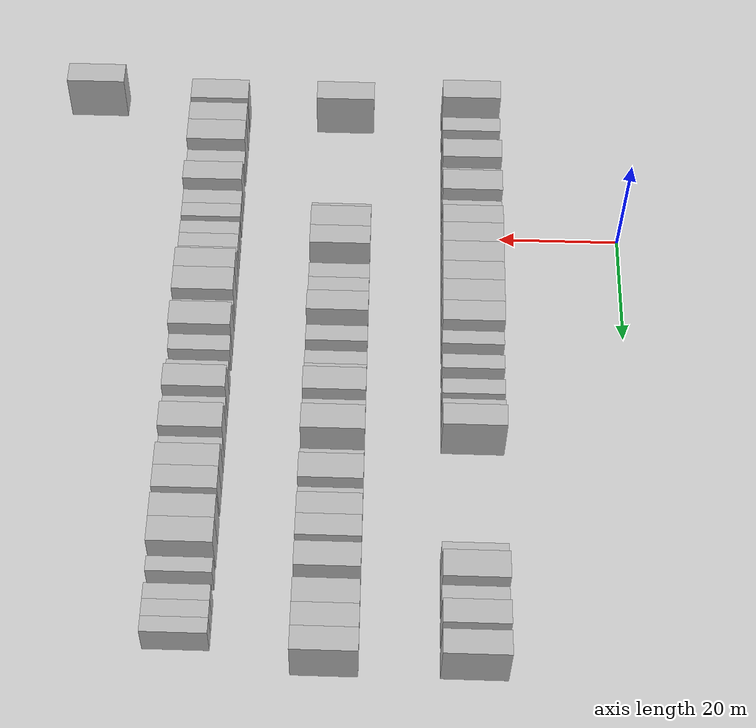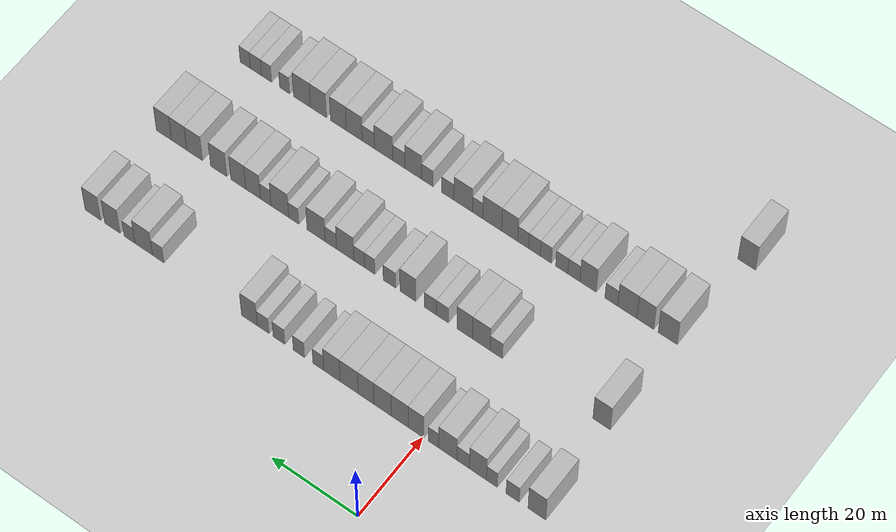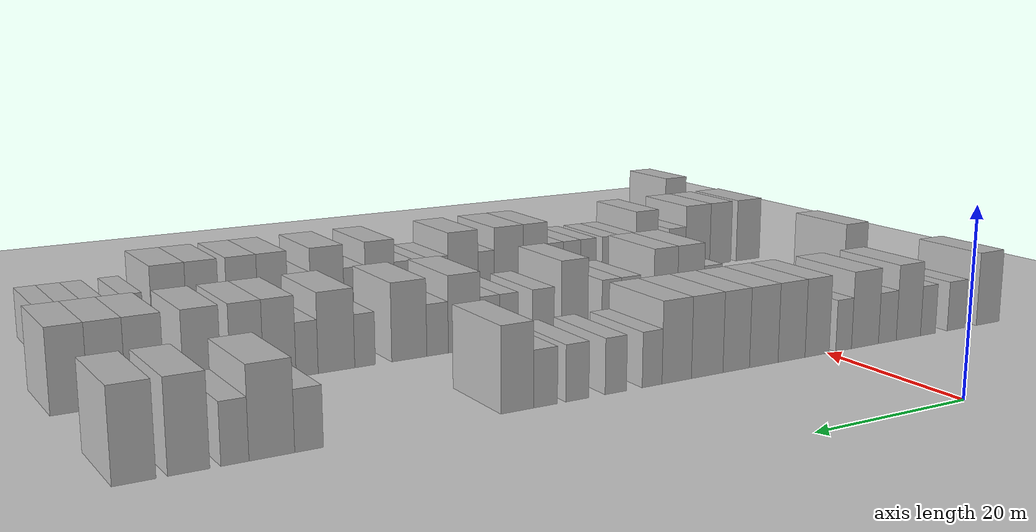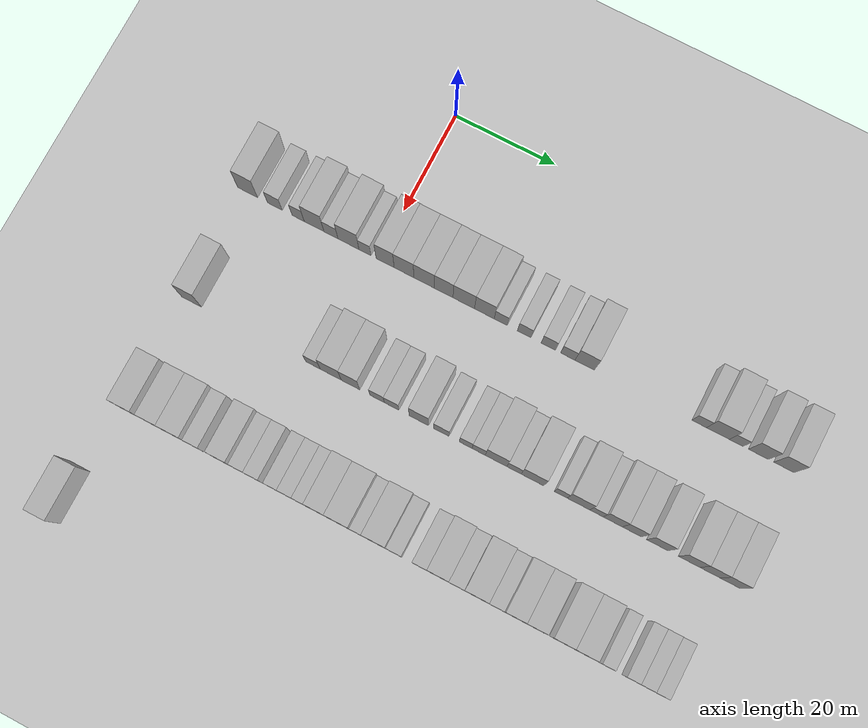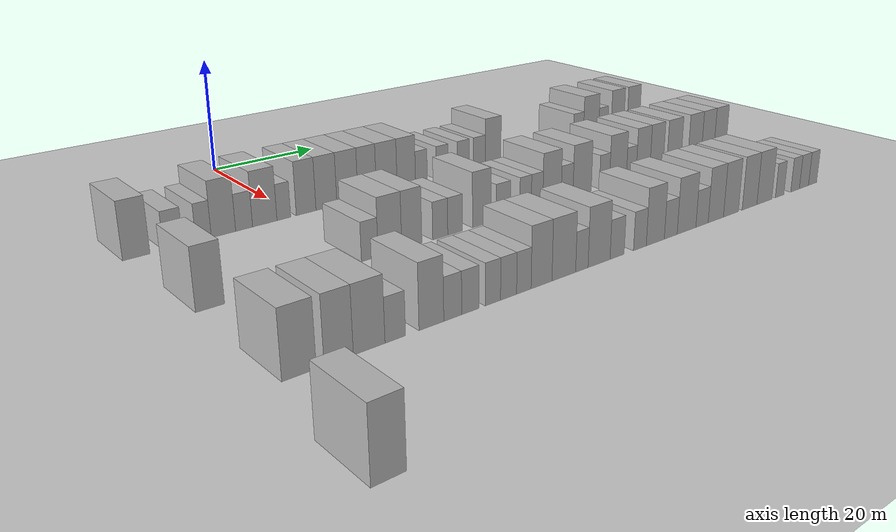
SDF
<sdf version="1.6">
 <world name="default">
  <include><name>ground_plane_1</name><uri>model://HANNAS_ground_plane</uri></include>
  <model name="building_87">
   <static>1</static>
   <pose>25.0000 -26.1186 0 0.000000 0.000000 0.000000</pose>
   <link name="link">
    <pose>0 0 4.50 0 0 0</pose>
    <collision name="collision"><geometry><box><size>10.0000 4.0142 9.0000</size></box></geometry></collision>
    <visual name="visual">
     <cast_shadows>0</cast_shadows>
     <geometry><box><size>10.0000 4.0142 9.0000</size></box></geometry>
     <material>
      <script>
       <uri>model://HANNAS_wall/materials/scripts</uri>
       <uri>model://HANNAS_wall/materials/textures</uri>
       <name>vrc/HANNAS_wall</name>
      </script>
     </material>
    </visual>
   </link>
  </model>
  <model name="building_88">
   <static>1</static>
   <pose>25.0000 -20.6188 0 0.000000 0.000000 0.000000</pose>
   <link name="link">
    <pose>0 0 3.00 0 0 0</pose>
    <collision name="collision"><geometry><box><size>10.0000 2.9854 6.0000</size></box></geometry></collision>
    <visual name="visual">
     <cast_shadows>0</cast_shadows>
     <geometry><box><size>10.0000 2.9854 6.0000</size></box></geometry>
     <material>
      <script>
       <uri>model://HANNAS_wall/materials/scripts</uri>
       <uri>model://HANNAS_wall/materials/textures</uri>
       <name>vrc/HANNAS_wall</name>
      </script>
     </material>
    </visual>
   </link>
  </model>
  <model name="building_89">
   <static>1</static>
   <pose>25.0000 -15.8960 0 0.000000 0.000000 0.000000</pose>
   <link name="link">
    <pose>0 0 3.00 0 0 0</pose>
    <collision name="collision"><geometry><box><size>10.0000 2.4601 6.0000</size></box></geometry></collision>
    <visual name="visual">
     <cast_shadows>0</cast_shadows>
     <geometry><box><size>10.0000 2.4601 6.0000</size></box></geometry>
     <material>
      <script>
       <uri>model://HANNAS_wall/materials/scripts</uri>
       <uri>model://HANNAS_wall/materials/textures</uri>
       <name>vrc/HANNAS_wall</name>
      </script>
     </material>
    </visual>
   </link>
  </model>
  <model name="building_90">
   <static>1</static>
   <pose>25.0000 -12.6887 0 0.000000 0.000000 0.000000</pose>
   <link name="link">
    <pose>0 0 4.50 0 0 0</pose>
    <collision name="collision"><geometry><box><size>10.0000 3.9545 9.0000</size></box></geometry></collision>
    <visual name="visual">
     <cast_shadows>0</cast_shadows>
     <geometry><box><size>10.0000 3.9545 9.0000</size></box></geometry>
     <material>
      <script>
       <uri>model://HANNAS_wall/materials/scripts</uri>
       <uri>model://HANNAS_wall/materials/textures</uri>
       <name>vrc/HANNAS_wall</name>
      </script>
     </material>
    </visual>
   </link>
  </model>
  <model name="building_91">
   <static>1</static>
   <pose>25.0000 -9.2938 0 0.000000 0.000000 0.000000</pose>
   <link name="link">
    <pose>0 0 3.00 0 0 0</pose>
    <collision name="collision"><geometry><box><size>10.0000 2.8353 6.0000</size></box></geometry></collision>
    <visual name="visual">
     <cast_shadows>0</cast_shadows>
     <geometry><box><size>10.0000 2.8353 6.0000</size></box></geometry>
     <material>
      <script>
       <uri>model://HANNAS_wall/materials/scripts</uri>
       <uri>model://HANNAS_wall/materials/textures</uri>
       <name>vrc/HANNAS_wall</name>
      </script>
     </material>
    </visual>
   </link>
  </model>
  <model name="building_92">
   <static>1</static>
   <pose>25.0000 -5.7715 0 0.000000 0.000000 0.000000</pose>
   <link name="link">
    <pose>0 0 4.50 0 0 0</pose>
    <collision name="collision"><geometry><box><size>10.0000 4.2094 9.0000</size></box></geometry></collision>
    <visual name="visual">
     <cast_shadows>0</cast_shadows>
     <geometry><box><size>10.0000 4.2094 9.0000</size></box></geometry>
     <material>
      <script>
       <uri>model://HANNAS_wall/materials/scripts</uri>
       <uri>model://HANNAS_wall/materials/textures</uri>
       <name>vrc/HANNAS_wall</name>
      </script>
     </material>
    </visual>
   </link>
  </model>
  <model name="building_93">
   <static>1</static>
   <pose>25.0000 -2.4583 0 0.000000 0.000000 0.000000</pose>
   <link name="link">
    <pose>0 0 3.00 0 0 0</pose>
    <collision name="collision"><geometry><box><size>10.0000 2.4170 6.0000</size></box></geometry></collision>
    <visual name="visual">
     <cast_shadows>0</cast_shadows>
     <geometry><box><size>10.0000 2.4170 6.0000</size></box></geometry>
     <material>
      <script>
       <uri>model://HANNAS_wall/materials/scripts</uri>
       <uri>model://HANNAS_wall/materials/textures</uri>
       <name>vrc/HANNAS_wall</name>
      </script>
     </material>
    </visual>
   </link>
  </model>
  <model name="building_94">
   <static>1</static>
   <pose>25.0000 1.5510 0 0.000000 0.000000 0.000000</pose>
   <link name="link">
    <pose>0 0 4.50 0 0 0</pose>
    <collision name="collision"><geometry><box><size>10.0000 3.6016 9.0000</size></box></geometry></collision>
    <visual name="visual">
     <cast_shadows>0</cast_shadows>
     <geometry><box><size>10.0000 3.6016 9.0000</size></box></geometry>
     <material>
      <script>
       <uri>model://HANNAS_wall/materials/scripts</uri>
       <uri>model://HANNAS_wall/materials/textures</uri>
       <name>vrc/HANNAS_wall</name>
      </script>
     </material>
    </visual>
   </link>
  </model>
  <model name="building_95">
   <static>1</static>
   <pose>25.0000 5.3190 0 0.000000 0.000000 0.000000</pose>
   <link name="link">
    <pose>0 0 4.50 0 0 0</pose>
    <collision name="collision"><geometry><box><size>10.0000 3.9343 9.0000</size></box></geometry></collision>
    <visual name="visual">
     <cast_shadows>0</cast_shadows>
     <geometry><box><size>10.0000 3.9343 9.0000</size></box></geometry>
     <material>
      <script>
       <uri>model://HANNAS_wall/materials/scripts</uri>
       <uri>model://HANNAS_wall/materials/textures</uri>
       <name>vrc/HANNAS_wall</name>
      </script>
     </material>
    </visual>
   </link>
  </model>
  <model name="building_96">
   <static>1</static>
   <pose>25.0000 9.3202 0 0.000000 0.000000 0.000000</pose>
   <link name="link">
    <pose>0 0 4.50 0 0 0</pose>
    <collision name="collision"><geometry><box><size>10.0000 4.0680 9.0000</size></box></geometry></collision>
    <visual name="visual">
     <cast_shadows>0</cast_shadows>
     <geometry><box><size>10.0000 4.0680 9.0000</size></box></geometry>
     <material>
      <script>
       <uri>model://HANNAS_wall/materials/scripts</uri>
       <uri>model://HANNAS_wall/materials/textures</uri>
       <name>vrc/HANNAS_wall</name>
      </script>
     </material>
    </visual>
   </link>
  </model>
  <model name="building_97">
   <static>1</static>
   <pose>25.0000 13.1934 0 0.000000 0.000000 0.000000</pose>
   <link name="link">
    <pose>0 0 4.50 0 0 0</pose>
    <collision name="collision"><geometry><box><size>10.0000 3.6784 9.0000</size></box></geometry></collision>
    <visual name="visual">
     <cast_shadows>0</cast_shadows>
     <geometry><box><size>10.0000 3.6784 9.0000</size></box></geometry>
     <material>
      <script>
       <uri>model://HANNAS_wall/materials/scripts</uri>
       <uri>model://HANNAS_wall/materials/textures</uri>
       <name>vrc/HANNAS_wall</name>
      </script>
     </material>
    </visual>
   </link>
  </model>
  <model name="building_98">
   <static>1</static>
   <pose>25.0000 17.1618 0 0.000000 0.000000 0.000000</pose>
   <link name="link">
    <pose>0 0 4.50 0 0 0</pose>
    <collision name="collision"><geometry><box><size>10.0000 4.2583 9.0000</size></box></geometry></collision>
    <visual name="visual">
     <cast_shadows>0</cast_shadows>
     <geometry><box><size>10.0000 4.2583 9.0000</size></box></geometry>
     <material>
      <script>
       <uri>model://HANNAS_wall/materials/scripts</uri>
       <uri>model://HANNAS_wall/materials/textures</uri>
       <name>vrc/HANNAS_wall</name>
      </script>
     </material>
    </visual>
   </link>
  </model>
  <model name="building_99">
   <static>1</static>
   <pose>25.0000 21.2291 0 0.000000 0.000000 0.000000</pose>
   <link name="link">
    <pose>0 0 4.50 0 0 0</pose>
    <collision name="collision"><geometry><box><size>10.0000 3.8764 9.0000</size></box></geometry></collision>
    <visual name="visual">
     <cast_shadows>0</cast_shadows>
     <geometry><box><size>10.0000 3.8764 9.0000</size></box></geometry>
     <material>
      <script>
       <uri>model://HANNAS_wall/materials/scripts</uri>
       <uri>model://HANNAS_wall/materials/textures</uri>
       <name>vrc/HANNAS_wall</name>
      </script>
     </material>
    </visual>
   </link>
  </model>
  <model name="building_100">
   <static>1</static>
   <pose>25.0000 24.4430 0 0.000000 0.000000 0.000000</pose>
   <link name="link">
    <pose>0 0 3.00 0 0 0</pose>
    <collision name="collision"><geometry><box><size>10.0000 2.5515 6.0000</size></box></geometry></collision>
    <visual name="visual">
     <cast_shadows>0</cast_shadows>
     <geometry><box><size>10.0000 2.5515 6.0000</size></box></geometry>
     <material>
      <script>
       <uri>model://HANNAS_wall/materials/scripts</uri>
       <uri>model://HANNAS_wall/materials/textures</uri>
       <name>vrc/HANNAS_wall</name>
      </script>
     </material>
    </visual>
   </link>
  </model>
  <model name="building_101">
   <static>1</static>
   <pose>25.0000 29.0494 0 0.000000 0.000000 0.000000</pose>
   <link name="link">
    <pose>0 0 3.00 0 0 0</pose>
    <collision name="collision"><geometry><box><size>10.0000 2.6613 6.0000</size></box></geometry></collision>
    <visual name="visual">
     <cast_shadows>0</cast_shadows>
     <geometry><box><size>10.0000 2.6613 6.0000</size></box></geometry>
     <material>
      <script>
       <uri>model://HANNAS_wall/materials/scripts</uri>
       <uri>model://HANNAS_wall/materials/textures</uri>
       <name>vrc/HANNAS_wall</name>
      </script>
     </material>
    </visual>
   </link>
  </model>
  <model name="building_102">
   <static>1</static>
   <pose>25.0000 33.7736 0 0.000000 0.000000 0.000000</pose>
   <link name="link">
    <pose>0 0 3.00 0 0 0</pose>
    <collision name="collision"><geometry><box><size>10.0000 2.7871 6.0000</size></box></geometry></collision>
    <visual name="visual">
     <cast_shadows>0</cast_shadows>
     <geometry><box><size>10.0000 2.7871 6.0000</size></box></geometry>
     <material>
      <script>
       <uri>model://HANNAS_wall/materials/scripts</uri>
       <uri>model://HANNAS_wall/materials/textures</uri>
       <name>vrc/HANNAS_wall</name>
      </script>
     </material>
    </visual>
   </link>
  </model>
  <model name="building_103">
   <static>1</static>
   <pose>25.0000 37.5689 0 0.000000 0.000000 0.000000</pose>
   <link name="link">
    <pose>0 0 3.00 0 0 0</pose>
    <collision name="collision"><geometry><box><size>10.0000 2.8035 6.0000</size></box></geometry></collision>
    <visual name="visual">
     <cast_shadows>0</cast_shadows>
     <geometry><box><size>10.0000 2.8035 6.0000</size></box></geometry>
     <material>
      <script>
       <uri>model://HANNAS_wall/materials/scripts</uri>
       <uri>model://HANNAS_wall/materials/textures</uri>
       <name>vrc/HANNAS_wall</name>
      </script>
     </material>
    </visual>
   </link>
  </model>
  <model name="building_104">
   <static>1</static>
   <pose>25.0000 40.8566 0 0.000000 0.000000 0.000000</pose>
   <link name="link">
    <pose>0 0 4.50 0 0 0</pose>
    <collision name="collision"><geometry><box><size>10.0000 3.7719 9.0000</size></box></geometry></collision>
    <visual name="visual">
     <cast_shadows>0</cast_shadows>
     <geometry><box><size>10.0000 3.7719 9.0000</size></box></geometry>
     <material>
      <script>
       <uri>model://HANNAS_wall/materials/scripts</uri>
       <uri>model://HANNAS_wall/materials/textures</uri>
       <name>vrc/HANNAS_wall</name>
      </script>
     </material>
    </visual>
   </link>
  </model>
  <model name="building_105">
   <static>1</static>
   <pose>25.0000 62.9547 0 0.000000 0.000000 0.000000</pose>
   <link name="link">
    <pose>0 0 3.00 0 0 0</pose>
    <collision name="collision"><geometry><box><size>10.0000 2.8081 6.0000</size></box></geometry></collision>
    <visual name="visual">
     <cast_shadows>0</cast_shadows>
     <geometry><box><size>10.0000 2.8081 6.0000</size></box></geometry>
     <material>
      <script>
       <uri>model://HANNAS_wall/materials/scripts</uri>
       <uri>model://HANNAS_wall/materials/textures</uri>
       <name>vrc/HANNAS_wall</name>
      </script>
     </material>
    </visual>
   </link>
  </model>
  <model name="building_106">
   <static>1</static>
   <pose>25.0000 66.5346 0 0.000000 0.000000 0.000000</pose>
   <link name="link">
    <pose>0 0 4.50 0 0 0</pose>
    <collision name="collision"><geometry><box><size>10.0000 4.3517 9.0000</size></box></geometry></collision>
    <visual name="visual">
     <cast_shadows>0</cast_shadows>
     <geometry><box><size>10.0000 4.3517 9.0000</size></box></geometry>
     <material>
      <script>
       <uri>model://HANNAS_wall/materials/scripts</uri>
       <uri>model://HANNAS_wall/materials/textures</uri>
       <name>vrc/HANNAS_wall</name>
      </script>
     </material>
    </visual>
   </link>
  </model>
  <model name="building_107">
   <static>1</static>
   <pose>25.0000 70.0150 0 0.000000 0.000000 0.000000</pose>
   <link name="link">
    <pose>0 0 3.00 0 0 0</pose>
    <collision name="collision"><geometry><box><size>10.0000 2.6090 6.0000</size></box></geometry></collision>
    <visual name="visual">
     <cast_shadows>0</cast_shadows>
     <geometry><box><size>10.0000 2.6090 6.0000</size></box></geometry>
     <material>
      <script>
       <uri>model://HANNAS_wall/materials/scripts</uri>
       <uri>model://HANNAS_wall/materials/textures</uri>
       <name>vrc/HANNAS_wall</name>
      </script>
     </material>
    </visual>
   </link>
  </model>
  <model name="building_108">
   <static>1</static>
   <pose>25.0000 74.2187 0 0.000000 0.000000 0.000000</pose>
   <link name="link">
    <pose>0 0 4.50 0 0 0</pose>
    <collision name="collision"><geometry><box><size>10.0000 3.7985 9.0000</size></box></geometry></collision>
    <visual name="visual">
     <cast_shadows>0</cast_shadows>
     <geometry><box><size>10.0000 3.7985 9.0000</size></box></geometry>
     <material>
      <script>
       <uri>model://HANNAS_wall/materials/scripts</uri>
       <uri>model://HANNAS_wall/materials/textures</uri>
       <name>vrc/HANNAS_wall</name>
      </script>
     </material>
    </visual>
   </link>
  </model>
  <model name="building_109">
   <static>1</static>
   <pose>25.0000 79.0467 0 0.000000 0.000000 0.000000</pose>
   <link name="link">
    <pose>0 0 4.50 0 0 0</pose>
    <collision name="collision"><geometry><box><size>10.0000 3.8575 9.0000</size></box></geometry></collision>
    <visual name="visual">
     <cast_shadows>0</cast_shadows>
     <geometry><box><size>10.0000 3.8575 9.0000</size></box></geometry>
     <material>
      <script>
       <uri>model://HANNAS_wall/materials/scripts</uri>
       <uri>model://HANNAS_wall/materials/textures</uri>
       <name>vrc/HANNAS_wall</name>
      </script>
     </material>
    </visual>
   </link>
  </model>
  <model name="building_260">
   <static>1</static>
   <pose>47.0000 -25.1034 0 0.000000 0.000000 0.000000</pose>
   <link name="link">
    <pose>0 0 4.50 0 0 0</pose>
    <collision name="collision"><geometry><box><size>10.0000 3.9548 9.0000</size></box></geometry></collision>
    <visual name="visual">
     <cast_shadows>0</cast_shadows>
     <geometry><box><size>10.0000 3.9548 9.0000</size></box></geometry>
     <material>
      <script>
       <uri>model://HANNAS_wall/materials/scripts</uri>
       <uri>model://HANNAS_wall/materials/textures</uri>
       <name>vrc/HANNAS_wall</name>
      </script>
     </material>
    </visual>
   </link>
  </model>
  <model name="building_261">
   <static>1</static>
   <pose>47.0000 -0.8538 0 0.000000 0.000000 0.000000</pose>
   <link name="link">
    <pose>0 0 3.00 0 0 0</pose>
    <collision name="collision"><geometry><box><size>10.0000 2.8482 6.0000</size></box></geometry></collision>
    <visual name="visual">
     <cast_shadows>0</cast_shadows>
     <geometry><box><size>10.0000 2.8482 6.0000</size></box></geometry>
     <material>
      <script>
       <uri>model://HANNAS_wall/materials/scripts</uri>
       <uri>model://HANNAS_wall/materials/textures</uri>
       <name>vrc/HANNAS_wall</name>
      </script>
     </material>
    </visual>
   </link>
  </model>
  <model name="building_262">
   <static>1</static>
   <pose>47.0000 2.6356 0 0.000000 0.000000 0.000000</pose>
   <link name="link">
    <pose>0 0 4.50 0 0 0</pose>
    <collision name="collision"><geometry><box><size>10.0000 4.1306 9.0000</size></box></geometry></collision>
    <visual name="visual">
     <cast_shadows>0</cast_shadows>
     <geometry><box><size>10.0000 4.1306 9.0000</size></box></geometry>
     <material>
      <script>
       <uri>model://HANNAS_wall/materials/scripts</uri>
       <uri>model://HANNAS_wall/materials/textures</uri>
       <name>vrc/HANNAS_wall</name>
      </script>
     </material>
    </visual>
   </link>
  </model>
  <model name="building_263">
   <static>1</static>
   <pose>47.0000 6.5182 0 0.000000 0.000000 0.000000</pose>
   <link name="link">
    <pose>0 0 4.50 0 0 0</pose>
    <collision name="collision"><geometry><box><size>10.0000 3.6345 9.0000</size></box></geometry></collision>
    <visual name="visual">
     <cast_shadows>0</cast_shadows>
     <geometry><box><size>10.0000 3.6345 9.0000</size></box></geometry>
     <material>
      <script>
       <uri>model://HANNAS_wall/materials/scripts</uri>
       <uri>model://HANNAS_wall/materials/textures</uri>
       <name>vrc/HANNAS_wall</name>
      </script>
     </material>
    </visual>
   </link>
  </model>
  <model name="building_264">
   <static>1</static>
   <pose>47.0000 11.7539 0 0.000000 0.000000 0.000000</pose>
   <link name="link">
    <pose>0 0 3.00 0 0 0</pose>
    <collision name="collision"><geometry><box><size>10.0000 2.8368 6.0000</size></box></geometry></collision>
    <visual name="visual">
     <cast_shadows>0</cast_shadows>
     <geometry><box><size>10.0000 2.8368 6.0000</size></box></geometry>
     <material>
      <script>
       <uri>model://HANNAS_wall/materials/scripts</uri>
       <uri>model://HANNAS_wall/materials/textures</uri>
       <name>vrc/HANNAS_wall</name>
      </script>
     </material>
    </visual>
   </link>
  </model>
  <model name="building_265">
   <static>1</static>
   <pose>47.0000 14.5909 0 0.000000 0.000000 0.000000</pose>
   <link name="link">
    <pose>0 0 3.00 0 0 0</pose>
    <collision name="collision"><geometry><box><size>10.0000 2.8373 6.0000</size></box></geometry></collision>
    <visual name="visual">
     <cast_shadows>0</cast_shadows>
     <geometry><box><size>10.0000 2.8373 6.0000</size></box></geometry>
     <material>
      <script>
       <uri>model://HANNAS_wall/materials/scripts</uri>
       <uri>model://HANNAS_wall/materials/textures</uri>
       <name>vrc/HANNAS_wall</name>
      </script>
     </material>
    </visual>
   </link>
  </model>
  <model name="building_266">
   <static>1</static>
   <pose>47.0000 19.8925 0 0.000000 0.000000 0.000000</pose>
   <link name="link">
    <pose>0 0 4.50 0 0 0</pose>
    <collision name="collision"><geometry><box><size>10.0000 3.7660 9.0000</size></box></geometry></collision>
    <visual name="visual">
     <cast_shadows>0</cast_shadows>
     <geometry><box><size>10.0000 3.7660 9.0000</size></box></geometry>
     <material>
      <script>
       <uri>model://HANNAS_wall/materials/scripts</uri>
       <uri>model://HANNAS_wall/materials/textures</uri>
       <name>vrc/HANNAS_wall</name>
      </script>
     </material>
    </visual>
   </link>
  </model>
  <model name="building_267">
   <static>1</static>
   <pose>47.0000 24.2684 0 0.000000 0.000000 0.000000</pose>
   <link name="link">
    <pose>0 0 3.00 0 0 0</pose>
    <collision name="collision"><geometry><box><size>10.0000 2.9856 6.0000</size></box></geometry></collision>
    <visual name="visual">
     <cast_shadows>0</cast_shadows>
     <geometry><box><size>10.0000 2.9856 6.0000</size></box></geometry>
     <material>
      <script>
       <uri>model://HANNAS_wall/materials/scripts</uri>
       <uri>model://HANNAS_wall/materials/textures</uri>
       <name>vrc/HANNAS_wall</name>
      </script>
     </material>
    </visual>
   </link>
  </model>
  <model name="building_268">
   <static>1</static>
   <pose>47.0000 29.0019 0 0.000000 0.000000 0.000000</pose>
   <link name="link">
    <pose>0 0 3.00 0 0 0</pose>
    <collision name="collision"><geometry><box><size>10.0000 2.4814 6.0000</size></box></geometry></collision>
    <visual name="visual">
     <cast_shadows>0</cast_shadows>
     <geometry><box><size>10.0000 2.4814 6.0000</size></box></geometry>
     <material>
      <script>
       <uri>model://HANNAS_wall/materials/scripts</uri>
       <uri>model://HANNAS_wall/materials/textures</uri>
       <name>vrc/HANNAS_wall</name>
      </script>
     </material>
    </visual>
   </link>
  </model>
  <model name="building_269">
   <static>1</static>
   <pose>47.0000 31.5164 0 0.000000 0.000000 0.000000</pose>
   <link name="link">
    <pose>0 0 3.00 0 0 0</pose>
    <collision name="collision"><geometry><box><size>10.0000 2.5477 6.0000</size></box></geometry></collision>
    <visual name="visual">
     <cast_shadows>0</cast_shadows>
     <geometry><box><size>10.0000 2.5477 6.0000</size></box></geometry>
     <material>
      <script>
       <uri>model://HANNAS_wall/materials/scripts</uri>
       <uri>model://HANNAS_wall/materials/textures</uri>
       <name>vrc/HANNAS_wall</name>
      </script>
     </material>
    </visual>
   </link>
  </model>
  <model name="building_270">
   <static>1</static>
   <pose>47.0000 34.8689 0 0.000000 0.000000 0.000000</pose>
   <link name="link">
    <pose>0 0 4.50 0 0 0</pose>
    <collision name="collision"><geometry><box><size>10.0000 4.1573 9.0000</size></box></geometry></collision>
    <visual name="visual">
     <cast_shadows>0</cast_shadows>
     <geometry><box><size>10.0000 4.1573 9.0000</size></box></geometry>
     <material>
      <script>
       <uri>model://HANNAS_wall/materials/scripts</uri>
       <uri>model://HANNAS_wall/materials/textures</uri>
       <name>vrc/HANNAS_wall</name>
      </script>
     </material>
    </visual>
   </link>
  </model>
  <model name="building_271">
   <static>1</static>
   <pose>47.0000 38.3180 0 0.000000 0.000000 0.000000</pose>
   <link name="link">
    <pose>0 0 3.00 0 0 0</pose>
    <collision name="collision"><geometry><box><size>10.0000 2.7409 6.0000</size></box></geometry></collision>
    <visual name="visual">
     <cast_shadows>0</cast_shadows>
     <geometry><box><size>10.0000 2.7409 6.0000</size></box></geometry>
     <material>
      <script>
       <uri>model://HANNAS_wall/materials/scripts</uri>
       <uri>model://HANNAS_wall/materials/textures</uri>
       <name>vrc/HANNAS_wall</name>
      </script>
     </material>
    </visual>
   </link>
  </model>
  <model name="building_272">
   <static>1</static>
   <pose>47.0000 41.8690 0 0.000000 0.000000 0.000000</pose>
   <link name="link">
    <pose>0 0 4.50 0 0 0</pose>
    <collision name="collision"><geometry><box><size>10.0000 4.3611 9.0000</size></box></geometry></collision>
    <visual name="visual">
     <cast_shadows>0</cast_shadows>
     <geometry><box><size>10.0000 4.3611 9.0000</size></box></geometry>
     <material>
      <script>
       <uri>model://HANNAS_wall/materials/scripts</uri>
       <uri>model://HANNAS_wall/materials/textures</uri>
       <name>vrc/HANNAS_wall</name>
      </script>
     </material>
    </visual>
   </link>
  </model>
  <model name="building_273">
   <static>1</static>
   <pose>47.0000 47.2861 0 0.000000 0.000000 0.000000</pose>
   <link name="link">
    <pose>0 0 3.00 0 0 0</pose>
    <collision name="collision"><geometry><box><size>10.0000 2.4732 6.0000</size></box></geometry></collision>
    <visual name="visual">
     <cast_shadows>0</cast_shadows>
     <geometry><box><size>10.0000 2.4732 6.0000</size></box></geometry>
     <material>
      <script>
       <uri>model://HANNAS_wall/materials/scripts</uri>
       <uri>model://HANNAS_wall/materials/textures</uri>
       <name>vrc/HANNAS_wall</name>
      </script>
     </material>
    </visual>
   </link>
  </model>
  <model name="building_274">
   <static>1</static>
   <pose>47.0000 50.6716 0 0.000000 0.000000 0.000000</pose>
   <link name="link">
    <pose>0 0 4.50 0 0 0</pose>
    <collision name="collision"><geometry><box><size>10.0000 4.2978 9.0000</size></box></geometry></collision>
    <visual name="visual">
     <cast_shadows>0</cast_shadows>
     <geometry><box><size>10.0000 4.2978 9.0000</size></box></geometry>
     <material>
      <script>
       <uri>model://HANNAS_wall/materials/scripts</uri>
       <uri>model://HANNAS_wall/materials/textures</uri>
       <name>vrc/HANNAS_wall</name>
      </script>
     </material>
    </visual>
   </link>
  </model>
  <model name="building_275">
   <static>1</static>
   <pose>47.0000 54.0886 0 0.000000 0.000000 0.000000</pose>
   <link name="link">
    <pose>0 0 3.00 0 0 0</pose>
    <collision name="collision"><geometry><box><size>10.0000 2.5362 6.0000</size></box></geometry></collision>
    <visual name="visual">
     <cast_shadows>0</cast_shadows>
     <geometry><box><size>10.0000 2.5362 6.0000</size></box></geometry>
     <material>
      <script>
       <uri>model://HANNAS_wall/materials/scripts</uri>
       <uri>model://HANNAS_wall/materials/textures</uri>
       <name>vrc/HANNAS_wall</name>
      </script>
     </material>
    </visual>
   </link>
  </model>
  <model name="building_276">
   <static>1</static>
   <pose>47.0000 57.1825 0 0.000000 0.000000 0.000000</pose>
   <link name="link">
    <pose>0 0 4.50 0 0 0</pose>
    <collision name="collision"><geometry><box><size>10.0000 3.6514 9.0000</size></box></geometry></collision>
    <visual name="visual">
     <cast_shadows>0</cast_shadows>
     <geometry><box><size>10.0000 3.6514 9.0000</size></box></geometry>
     <material>
      <script>
       <uri>model://HANNAS_wall/materials/scripts</uri>
       <uri>model://HANNAS_wall/materials/textures</uri>
       <name>vrc/HANNAS_wall</name>
      </script>
     </material>
    </visual>
   </link>
  </model>
  <model name="building_277">
   <static>1</static>
   <pose>47.0000 60.8198 0 0.000000 0.000000 0.000000</pose>
   <link name="link">
    <pose>0 0 4.50 0 0 0</pose>
    <collision name="collision"><geometry><box><size>10.0000 3.6232 9.0000</size></box></geometry></collision>
    <visual name="visual">
     <cast_shadows>0</cast_shadows>
     <geometry><box><size>10.0000 3.6232 9.0000</size></box></geometry>
     <material>
      <script>
       <uri>model://HANNAS_wall/materials/scripts</uri>
       <uri>model://HANNAS_wall/materials/textures</uri>
       <name>vrc/HANNAS_wall</name>
      </script>
     </material>
    </visual>
   </link>
  </model>
  <model name="building_278">
   <static>1</static>
   <pose>47.0000 65.6331 0 0.000000 0.000000 0.000000</pose>
   <link name="link">
    <pose>0 0 4.50 0 0 0</pose>
    <collision name="collision"><geometry><box><size>10.0000 4.0035 9.0000</size></box></geometry></collision>
    <visual name="visual">
     <cast_shadows>0</cast_shadows>
     <geometry><box><size>10.0000 4.0035 9.0000</size></box></geometry>
     <material>
      <script>
       <uri>model://HANNAS_wall/materials/scripts</uri>
       <uri>model://HANNAS_wall/materials/textures</uri>
       <name>vrc/HANNAS_wall</name>
      </script>
     </material>
    </visual>
   </link>
  </model>
  <model name="building_279">
   <static>1</static>
   <pose>47.0000 71.6059 0 0.000000 0.000000 0.000000</pose>
   <link name="link">
    <pose>0 0 4.50 0 0 0</pose>
    <collision name="collision"><geometry><box><size>10.0000 3.9421 9.0000</size></box></geometry></collision>
    <visual name="visual">
     <cast_shadows>0</cast_shadows>
     <geometry><box><size>10.0000 3.9421 9.0000</size></box></geometry>
     <material>
      <script>
       <uri>model://HANNAS_wall/materials/scripts</uri>
       <uri>model://HANNAS_wall/materials/textures</uri>
       <name>vrc/HANNAS_wall</name>
      </script>
     </material>
    </visual>
   </link>
  </model>
  <model name="building_280">
   <static>1</static>
   <pose>47.0000 75.4532 0 0.000000 0.000000 0.000000</pose>
   <link name="link">
    <pose>0 0 4.50 0 0 0</pose>
    <collision name="collision"><geometry><box><size>10.0000 3.7524 9.0000</size></box></geometry></collision>
    <visual name="visual">
     <cast_shadows>0</cast_shadows>
     <geometry><box><size>10.0000 3.7524 9.0000</size></box></geometry>
     <material>
      <script>
       <uri>model://HANNAS_wall/materials/scripts</uri>
       <uri>model://HANNAS_wall/materials/textures</uri>
       <name>vrc/HANNAS_wall</name>
      </script>
     </material>
    </visual>
   </link>
  </model>
  <model name="building_281">
   <static>1</static>
   <pose>47.0000 79.2098 0 0.000000 0.000000 0.000000</pose>
   <link name="link">
    <pose>0 0 4.50 0 0 0</pose>
    <collision name="collision"><geometry><box><size>10.0000 3.7609 9.0000</size></box></geometry></collision>
    <visual name="visual">
     <cast_shadows>0</cast_shadows>
     <geometry><box><size>10.0000 3.7609 9.0000</size></box></geometry>
     <material>
      <script>
       <uri>model://HANNAS_wall/materials/scripts</uri>
       <uri>model://HANNAS_wall/materials/textures</uri>
       <name>vrc/HANNAS_wall</name>
      </script>
     </material>
    </visual>
   </link>
  </model>
  <model name="building_453">
   <static>1</static>
   <pose>69.0000 -24.7908 0 0.000000 0.000000 0.000000</pose>
   <link name="link">
    <pose>0 0 4.50 0 0 0</pose>
    <collision name="collision"><geometry><box><size>10.0000 4.3742 9.0000</size></box></geometry></collision>
    <visual name="visual">
     <cast_shadows>0</cast_shadows>
     <geometry><box><size>10.0000 4.3742 9.0000</size></box></geometry>
     <material>
      <script>
       <uri>model://HANNAS_wall/materials/scripts</uri>
       <uri>model://HANNAS_wall/materials/textures</uri>
       <name>vrc/HANNAS_wall</name>
      </script>
     </material>
    </visual>
   </link>
  </model>
  <model name="building_454">
   <static>1</static>
   <pose>69.0000 -19.6472 0 0.000000 0.000000 0.000000</pose>
   <link name="link">
    <pose>0 0 4.50 0 0 0</pose>
    <collision name="collision"><geometry><box><size>10.0000 3.9130 9.0000</size></box></geometry></collision>
    <visual name="visual">
     <cast_shadows>0</cast_shadows>
     <geometry><box><size>10.0000 3.9130 9.0000</size></box></geometry>
     <material>
      <script>
       <uri>model://HANNAS_wall/materials/scripts</uri>
       <uri>model://HANNAS_wall/materials/textures</uri>
       <name>vrc/HANNAS_wall</name>
      </script>
     </material>
    </visual>
   </link>
  </model>
  <model name="building_455">
   <static>1</static>
   <pose>69.0000 -15.4837 0 0.000000 0.000000 0.000000</pose>
   <link name="link">
    <pose>0 0 4.50 0 0 0</pose>
    <collision name="collision"><geometry><box><size>10.0000 4.4139 9.0000</size></box></geometry></collision>
    <visual name="visual">
     <cast_shadows>0</cast_shadows>
     <geometry><box><size>10.0000 4.4139 9.0000</size></box></geometry>
     <material>
      <script>
       <uri>model://HANNAS_wall/materials/scripts</uri>
       <uri>model://HANNAS_wall/materials/textures</uri>
       <name>vrc/HANNAS_wall</name>
      </script>
     </material>
    </visual>
   </link>
  </model>
  <model name="building_456">
   <static>1</static>
   <pose>69.0000 -11.7894 0 0.000000 0.000000 0.000000</pose>
   <link name="link">
    <pose>0 0 3.00 0 0 0</pose>
    <collision name="collision"><geometry><box><size>10.0000 2.9747 6.0000</size></box></geometry></collision>
    <visual name="visual">
     <cast_shadows>0</cast_shadows>
     <geometry><box><size>10.0000 2.9747 6.0000</size></box></geometry>
     <material>
      <script>
       <uri>model://HANNAS_wall/materials/scripts</uri>
       <uri>model://HANNAS_wall/materials/textures</uri>
       <name>vrc/HANNAS_wall</name>
      </script>
     </material>
    </visual>
   </link>
  </model>
  <model name="building_457">
   <static>1</static>
   <pose>69.0000 -6.4024 0 0.000000 0.000000 0.000000</pose>
   <link name="link">
    <pose>0 0 4.50 0 0 0</pose>
    <collision name="collision"><geometry><box><size>10.0000 3.7993 9.0000</size></box></geometry></collision>
    <visual name="visual">
     <cast_shadows>0</cast_shadows>
     <geometry><box><size>10.0000 3.7993 9.0000</size></box></geometry>
     <material>
      <script>
       <uri>model://HANNAS_wall/materials/scripts</uri>
       <uri>model://HANNAS_wall/materials/textures</uri>
       <name>vrc/HANNAS_wall</name>
      </script>
     </material>
    </visual>
   </link>
  </model>
  <model name="building_458">
   <static>1</static>
   <pose>69.0000 -3.0782 0 0.000000 0.000000 0.000000</pose>
   <link name="link">
    <pose>0 0 3.00 0 0 0</pose>
    <collision name="collision"><geometry><box><size>10.0000 2.8491 6.0000</size></box></geometry></collision>
    <visual name="visual">
     <cast_shadows>0</cast_shadows>
     <geometry><box><size>10.0000 2.8491 6.0000</size></box></geometry>
     <material>
      <script>
       <uri>model://HANNAS_wall/materials/scripts</uri>
       <uri>model://HANNAS_wall/materials/textures</uri>
       <name>vrc/HANNAS_wall</name>
      </script>
     </material>
    </visual>
   </link>
  </model>
  <model name="building_459">
   <static>1</static>
   <pose>69.0000 -0.2353 0 0.000000 0.000000 0.000000</pose>
   <link name="link">
    <pose>0 0 3.00 0 0 0</pose>
    <collision name="collision"><geometry><box><size>10.0000 2.8368 6.0000</size></box></geometry></collision>
    <visual name="visual">
     <cast_shadows>0</cast_shadows>
     <geometry><box><size>10.0000 2.8368 6.0000</size></box></geometry>
     <material>
      <script>
       <uri>model://HANNAS_wall/materials/scripts</uri>
       <uri>model://HANNAS_wall/materials/textures</uri>
       <name>vrc/HANNAS_wall</name>
      </script>
     </material>
    </visual>
   </link>
  </model>
  <model name="building_460">
   <static>1</static>
   <pose>69.0000 3.4756 0 0.000000 0.000000 0.000000</pose>
   <link name="link">
    <pose>0 0 3.00 0 0 0</pose>
    <collision name="collision"><geometry><box><size>10.0000 2.5850 6.0000</size></box></geometry></collision>
    <visual name="visual">
     <cast_shadows>0</cast_shadows>
     <geometry><box><size>10.0000 2.5850 6.0000</size></box></geometry>
     <material>
      <script>
       <uri>model://HANNAS_wall/materials/scripts</uri>
       <uri>model://HANNAS_wall/materials/textures</uri>
       <name>vrc/HANNAS_wall</name>
      </script>
     </material>
    </visual>
   </link>
  </model>
  <model name="building_461">
   <static>1</static>
   <pose>69.0000 6.1591 0 0.000000 0.000000 0.000000</pose>
   <link name="link">
    <pose>0 0 3.00 0 0 0</pose>
    <collision name="collision"><geometry><box><size>10.0000 2.7819 6.0000</size></box></geometry></collision>
    <visual name="visual">
     <cast_shadows>0</cast_shadows>
     <geometry><box><size>10.0000 2.7819 6.0000</size></box></geometry>
     <material>
      <script>
       <uri>model://HANNAS_wall/materials/scripts</uri>
       <uri>model://HANNAS_wall/materials/textures</uri>
       <name>vrc/HANNAS_wall</name>
      </script>
     </material>
    </visual>
   </link>
  </model>
  <model name="building_462">
   <static>1</static>
   <pose>69.0000 8.8352 0 0.000000 0.000000 0.000000</pose>
   <link name="link">
    <pose>0 0 3.00 0 0 0</pose>
    <collision name="collision"><geometry><box><size>10.0000 2.5703 6.0000</size></box></geometry></collision>
    <visual name="visual">
     <cast_shadows>0</cast_shadows>
     <geometry><box><size>10.0000 2.5703 6.0000</size></box></geometry>
     <material>
      <script>
       <uri>model://HANNAS_wall/materials/scripts</uri>
       <uri>model://HANNAS_wall/materials/textures</uri>
       <name>vrc/HANNAS_wall</name>
      </script>
     </material>
    </visual>
   </link>
  </model>
  <model name="building_463">
   <static>1</static>
   <pose>69.0000 12.0317 0 0.000000 0.000000 0.000000</pose>
   <link name="link">
    <pose>0 0 4.50 0 0 0</pose>
    <collision name="collision"><geometry><box><size>10.0000 3.8227 9.0000</size></box></geometry></collision>
    <visual name="visual">
     <cast_shadows>0</cast_shadows>
     <geometry><box><size>10.0000 3.8227 9.0000</size></box></geometry>
     <material>
      <script>
       <uri>model://HANNAS_wall/materials/scripts</uri>
       <uri>model://HANNAS_wall/materials/textures</uri>
       <name>vrc/HANNAS_wall</name>
      </script>
     </material>
    </visual>
   </link>
  </model>
  <model name="building_464">
   <static>1</static>
   <pose>69.0000 16.1897 0 0.000000 0.000000 0.000000</pose>
   <link name="link">
    <pose>0 0 4.50 0 0 0</pose>
    <collision name="collision"><geometry><box><size>10.0000 4.4934 9.0000</size></box></geometry></collision>
    <visual name="visual">
     <cast_shadows>0</cast_shadows>
     <geometry><box><size>10.0000 4.4934 9.0000</size></box></geometry>
     <material>
      <script>
       <uri>model://HANNAS_wall/materials/scripts</uri>
       <uri>model://HANNAS_wall/materials/textures</uri>
       <name>vrc/HANNAS_wall</name>
      </script>
     </material>
    </visual>
   </link>
  </model>
  <model name="building_465">
   <static>1</static>
   <pose>69.0000 19.6557 0 0.000000 0.000000 0.000000</pose>
   <link name="link">
    <pose>0 0 3.00 0 0 0</pose>
    <collision name="collision"><geometry><box><size>10.0000 2.4385 6.0000</size></box></geometry></collision>
    <visual name="visual">
     <cast_shadows>0</cast_shadows>
     <geometry><box><size>10.0000 2.4385 6.0000</size></box></geometry>
     <material>
      <script>
       <uri>model://HANNAS_wall/materials/scripts</uri>
       <uri>model://HANNAS_wall/materials/textures</uri>
       <name>vrc/HANNAS_wall</name>
      </script>
     </material>
    </visual>
   </link>
  </model>
  <model name="building_466">
   <static>1</static>
   <pose>69.0000 23.0954 0 0.000000 0.000000 0.000000</pose>
   <link name="link">
    <pose>0 0 4.50 0 0 0</pose>
    <collision name="collision"><geometry><box><size>10.0000 4.4409 9.0000</size></box></geometry></collision>
    <visual name="visual">
     <cast_shadows>0</cast_shadows>
     <geometry><box><size>10.0000 4.4409 9.0000</size></box></geometry>
     <material>
      <script>
       <uri>model://HANNAS_wall/materials/scripts</uri>
       <uri>model://HANNAS_wall/materials/textures</uri>
       <name>vrc/HANNAS_wall</name>
      </script>
     </material>
    </visual>
   </link>
  </model>
  <model name="building_467">
   <static>1</static>
   <pose>69.0000 26.7897 0 0.000000 0.000000 0.000000</pose>
   <link name="link">
    <pose>0 0 3.00 0 0 0</pose>
    <collision name="collision"><geometry><box><size>10.0000 2.9477 6.0000</size></box></geometry></collision>
    <visual name="visual">
     <cast_shadows>0</cast_shadows>
     <geometry><box><size>10.0000 2.9477 6.0000</size></box></geometry>
     <material>
      <script>
       <uri>model://HANNAS_wall/materials/scripts</uri>
       <uri>model://HANNAS_wall/materials/textures</uri>
       <name>vrc/HANNAS_wall</name>
      </script>
     </material>
    </visual>
   </link>
  </model>
  <model name="building_468">
   <static>1</static>
   <pose>69.0000 31.6503 0 0.000000 0.000000 0.000000</pose>
   <link name="link">
    <pose>0 0 3.00 0 0 0</pose>
    <collision name="collision"><geometry><box><size>10.0000 2.7737 6.0000</size></box></geometry></collision>
    <visual name="visual">
     <cast_shadows>0</cast_shadows>
     <geometry><box><size>10.0000 2.7737 6.0000</size></box></geometry>
     <material>
      <script>
       <uri>model://HANNAS_wall/materials/scripts</uri>
       <uri>model://HANNAS_wall/materials/textures</uri>
       <name>vrc/HANNAS_wall</name>
      </script>
     </material>
    </visual>
   </link>
  </model>
  <model name="building_469">
   <static>1</static>
   <pose>69.0000 35.0606 0 0.000000 0.000000 0.000000</pose>
   <link name="link">
    <pose>0 0 4.50 0 0 0</pose>
    <collision name="collision"><geometry><box><size>10.0000 4.0468 9.0000</size></box></geometry></collision>
    <visual name="visual">
     <cast_shadows>0</cast_shadows>
     <geometry><box><size>10.0000 4.0468 9.0000</size></box></geometry>
     <material>
      <script>
       <uri>model://HANNAS_wall/materials/scripts</uri>
       <uri>model://HANNAS_wall/materials/textures</uri>
       <name>vrc/HANNAS_wall</name>
      </script>
     </material>
    </visual>
   </link>
  </model>
  <model name="building_470">
   <static>1</static>
   <pose>69.0000 38.5648 0 0.000000 0.000000 0.000000</pose>
   <link name="link">
    <pose>0 0 3.00 0 0 0</pose>
    <collision name="collision"><geometry><box><size>10.0000 2.9617 6.0000</size></box></geometry></collision>
    <visual name="visual">
     <cast_shadows>0</cast_shadows>
     <geometry><box><size>10.0000 2.9617 6.0000</size></box></geometry>
     <material>
      <script>
       <uri>model://HANNAS_wall/materials/scripts</uri>
       <uri>model://HANNAS_wall/materials/textures</uri>
       <name>vrc/HANNAS_wall</name>
      </script>
     </material>
    </visual>
   </link>
  </model>
  <model name="building_471">
   <static>1</static>
   <pose>69.0000 42.2725 0 0.000000 0.000000 0.000000</pose>
   <link name="link">
    <pose>0 0 4.50 0 0 0</pose>
    <collision name="collision"><geometry><box><size>10.0000 4.4536 9.0000</size></box></geometry></collision>
    <visual name="visual">
     <cast_shadows>0</cast_shadows>
     <geometry><box><size>10.0000 4.4536 9.0000</size></box></geometry>
     <material>
      <script>
       <uri>model://HANNAS_wall/materials/scripts</uri>
       <uri>model://HANNAS_wall/materials/textures</uri>
       <name>vrc/HANNAS_wall</name>
      </script>
     </material>
    </visual>
   </link>
  </model>
  <model name="building_472">
   <static>1</static>
   <pose>69.0000 45.9952 0 0.000000 0.000000 0.000000</pose>
   <link name="link">
    <pose>0 0 3.00 0 0 0</pose>
    <collision name="collision"><geometry><box><size>10.0000 2.9917 6.0000</size></box></geometry></collision>
    <visual name="visual">
     <cast_shadows>0</cast_shadows>
     <geometry><box><size>10.0000 2.9917 6.0000</size></box></geometry>
     <material>
      <script>
       <uri>model://HANNAS_wall/materials/scripts</uri>
       <uri>model://HANNAS_wall/materials/textures</uri>
       <name>vrc/HANNAS_wall</name>
      </script>
     </material>
    </visual>
   </link>
  </model>
  <model name="building_473">
   <static>1</static>
   <pose>69.0000 49.4274 0 0.000000 0.000000 0.000000</pose>
   <link name="link">
    <pose>0 0 4.50 0 0 0</pose>
    <collision name="collision"><geometry><box><size>10.0000 3.8727 9.0000</size></box></geometry></collision>
    <visual name="visual">
     <cast_shadows>0</cast_shadows>
     <geometry><box><size>10.0000 3.8727 9.0000</size></box></geometry>
     <material>
      <script>
       <uri>model://HANNAS_wall/materials/scripts</uri>
       <uri>model://HANNAS_wall/materials/textures</uri>
       <name>vrc/HANNAS_wall</name>
      </script>
     </material>
    </visual>
   </link>
  </model>
  <model name="building_474">
   <static>1</static>
   <pose>69.0000 53.2964 0 0.000000 0.000000 0.000000</pose>
   <link name="link">
    <pose>0 0 4.50 0 0 0</pose>
    <collision name="collision"><geometry><box><size>10.0000 3.8654 9.0000</size></box></geometry></collision>
    <visual name="visual">
     <cast_shadows>0</cast_shadows>
     <geometry><box><size>10.0000 3.8654 9.0000</size></box></geometry>
     <material>
      <script>
       <uri>model://HANNAS_wall/materials/scripts</uri>
       <uri>model://HANNAS_wall/materials/textures</uri>
       <name>vrc/HANNAS_wall</name>
      </script>
     </material>
    </visual>
   </link>
  </model>
  <model name="building_475">
   <static>1</static>
   <pose>69.0000 58.2107 0 0.000000 0.000000 0.000000</pose>
   <link name="link">
    <pose>0 0 4.50 0 0 0</pose>
    <collision name="collision"><geometry><box><size>10.0000 3.9631 9.0000</size></box></geometry></collision>
    <visual name="visual">
     <cast_shadows>0</cast_shadows>
     <geometry><box><size>10.0000 3.9631 9.0000</size></box></geometry>
     <material>
      <script>
       <uri>model://HANNAS_wall/materials/scripts</uri>
       <uri>model://HANNAS_wall/materials/textures</uri>
       <name>vrc/HANNAS_wall</name>
      </script>
     </material>
    </visual>
   </link>
  </model>
  <model name="building_476">
   <static>1</static>
   <pose>69.0000 62.2692 0 0.000000 0.000000 0.000000</pose>
   <link name="link">
    <pose>0 0 4.50 0 0 0</pose>
    <collision name="collision"><geometry><box><size>10.0000 4.1540 9.0000</size></box></geometry></collision>
    <visual name="visual">
     <cast_shadows>0</cast_shadows>
     <geometry><box><size>10.0000 4.1540 9.0000</size></box></geometry>
     <material>
      <script>
       <uri>model://HANNAS_wall/materials/scripts</uri>
       <uri>model://HANNAS_wall/materials/textures</uri>
       <name>vrc/HANNAS_wall</name>
      </script>
     </material>
    </visual>
   </link>
  </model>
  <model name="building_477">
   <static>1</static>
   <pose>69.0000 66.5705 0 0.000000 0.000000 0.000000</pose>
   <link name="link">
    <pose>0 0 3.00 0 0 0</pose>
    <collision name="collision"><geometry><box><size>10.0000 2.4486 6.0000</size></box></geometry></collision>
    <visual name="visual">
     <cast_shadows>0</cast_shadows>
     <geometry><box><size>10.0000 2.4486 6.0000</size></box></geometry>
     <material>
      <script>
       <uri>model://HANNAS_wall/materials/scripts</uri>
       <uri>model://HANNAS_wall/materials/textures</uri>
       <name>vrc/HANNAS_wall</name>
      </script>
     </material>
    </visual>
   </link>
  </model>
  <model name="building_478">
   <static>1</static>
   <pose>69.0000 71.0755 0 0.000000 0.000000 0.000000</pose>
   <link name="link">
    <pose>0 0 3.00 0 0 0</pose>
    <collision name="collision"><geometry><box><size>10.0000 2.5613 6.0000</size></box></geometry></collision>
    <visual name="visual">
     <cast_shadows>0</cast_shadows>
     <geometry><box><size>10.0000 2.5613 6.0000</size></box></geometry>
     <material>
      <script>
       <uri>model://HANNAS_wall/materials/scripts</uri>
       <uri>model://HANNAS_wall/materials/textures</uri>
       <name>vrc/HANNAS_wall</name>
      </script>
     </material>
    </visual>
   </link>
  </model>
  <model name="building_479">
   <static>1</static>
   <pose>69.0000 73.7363 0 0.000000 0.000000 0.000000</pose>
   <link name="link">
    <pose>0 0 3.00 0 0 0</pose>
    <collision name="collision"><geometry><box><size>10.0000 2.7603 6.0000</size></box></geometry></collision>
    <visual name="visual">
     <cast_shadows>0</cast_shadows>
     <geometry><box><size>10.0000 2.7603 6.0000</size></box></geometry>
     <material>
      <script>
       <uri>model://HANNAS_wall/materials/scripts</uri>
       <uri>model://HANNAS_wall/materials/textures</uri>
       <name>vrc/HANNAS_wall</name>
      </script>
     </material>
    </visual>
   </link>
  </model>
  <model name="building_480">
   <static>1</static>
   <pose>69.0000 76.3732 0 0.000000 0.000000 0.000000</pose>
   <link name="link">
    <pose>0 0 3.00 0 0 0</pose>
    <collision name="collision"><geometry><box><size>10.0000 2.5135 6.0000</size></box></geometry></collision>
    <visual name="visual">
     <cast_shadows>0</cast_shadows>
     <geometry><box><size>10.0000 2.5135 6.0000</size></box></geometry>
     <material>
      <script>
       <uri>model://HANNAS_wall/materials/scripts</uri>
       <uri>model://HANNAS_wall/materials/textures</uri>
       <name>vrc/HANNAS_wall</name>
      </script>
     </material>
    </visual>
   </link>
  </model>
  <model name="building_644">
   <static>1</static>
   <pose>91.0000 -27.8745 0 0.000000 0.000000 0.000000</pose>
   <link name="link">
    <pose>0 0 4.50 0 0 0</pose>
    <collision name="collision"><geometry><box><size>10.0000 4.0662 9.0000</size></box></geometry></collision>
    <visual name="visual">
     <cast_shadows>0</cast_shadows>
     <geometry><box><size>10.0000 4.0662 9.0000</size></box></geometry>
     <material>
      <script>
       <uri>model://HANNAS_wall/materials/scripts</uri>
       <uri>model://HANNAS_wall/materials/textures</uri>
       <name>vrc/HANNAS_wall</name>
      </script>
     </material>
    </visual>
   </link>
  </model>
 </world>
</sdf>
